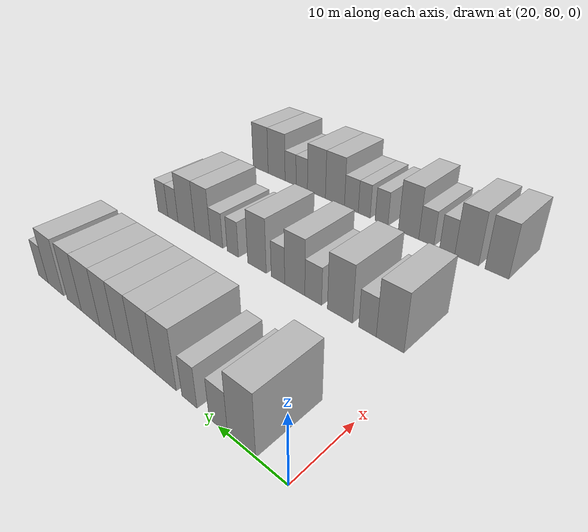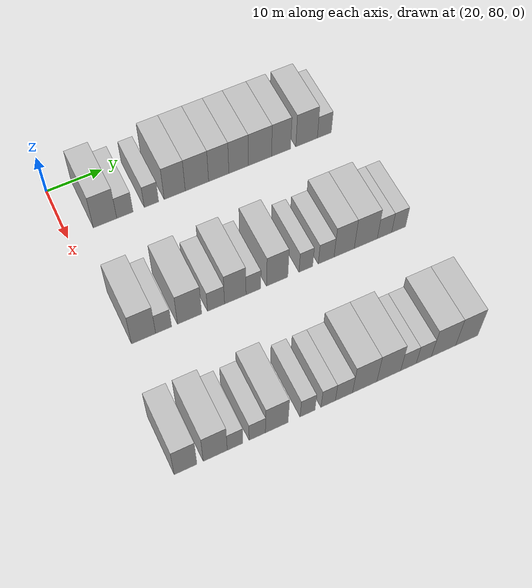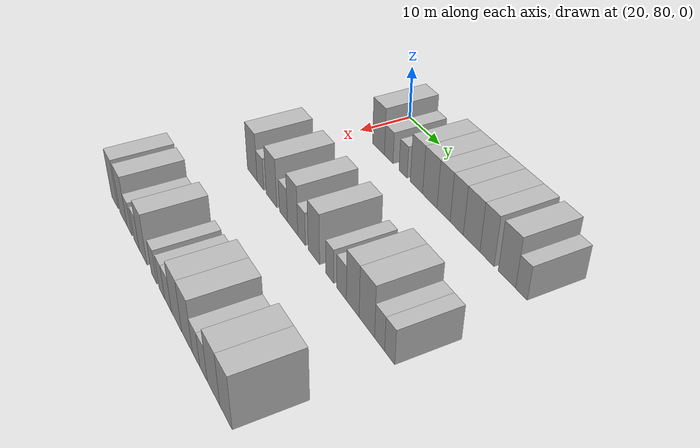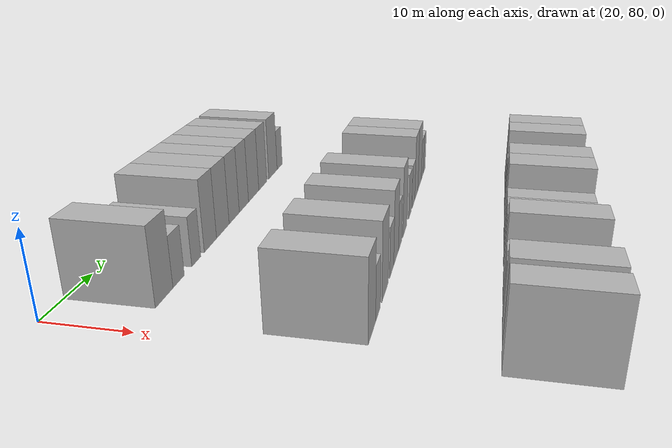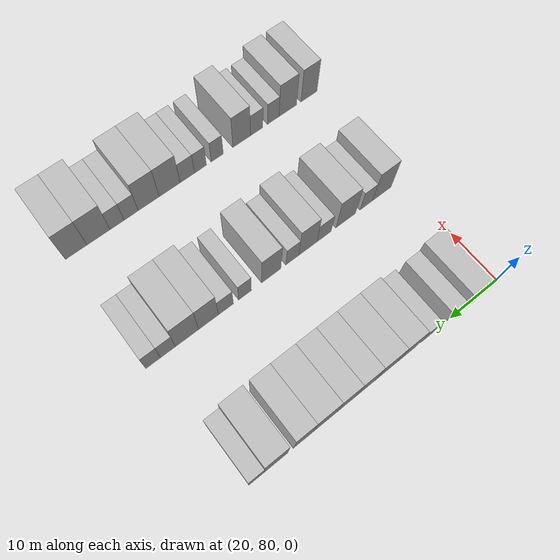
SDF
<sdf version="1.6">
 <world name="default">
  <model name="building_116">
   <static>1</static>
   <pose>25.0000 86.5409 0 0.000000 0.000000 0.000000</pose>
   <link name="link">
    <pose>0 0 4.50 0 0 0</pose>
    <collision name="collision"><geometry><box><size>10.0000 4.1463 9.0000</size></box></geometry></collision>
    <visual name="visual">
     <cast_shadows>0</cast_shadows>
     <geometry><box><size>10.0000 4.1463 9.0000</size></box></geometry>
     <material>
      <script>
       <uri>model://HANNAS_wall/materials/scripts</uri>
       <uri>model://HANNAS_wall/materials/textures</uri>
       <name>vrc/HANNAS_wall</name>
      </script>
     </material>
    </visual>
   </link>
  </model>
  <model name="building_117">
   <static>1</static>
   <pose>25.0000 90.0628 0 0.000000 0.000000 0.000000</pose>
   <link name="link">
    <pose>0 0 3.00 0 0 0</pose>
    <collision name="collision"><geometry><box><size>10.0000 2.8974 6.0000</size></box></geometry></collision>
    <visual name="visual">
     <cast_shadows>0</cast_shadows>
     <geometry><box><size>10.0000 2.8974 6.0000</size></box></geometry>
     <material>
      <script>
       <uri>model://HANNAS_wall/materials/scripts</uri>
       <uri>model://HANNAS_wall/materials/textures</uri>
       <name>vrc/HANNAS_wall</name>
      </script>
     </material>
    </visual>
   </link>
  </model>
  <model name="building_118">
   <static>1</static>
   <pose>25.0000 94.8070 0 0.000000 0.000000 0.000000</pose>
   <link name="link">
    <pose>0 0 3.00 0 0 0</pose>
    <collision name="collision"><geometry><box><size>10.0000 2.5909 6.0000</size></box></geometry></collision>
    <visual name="visual">
     <cast_shadows>0</cast_shadows>
     <geometry><box><size>10.0000 2.5909 6.0000</size></box></geometry>
     <material>
      <script>
       <uri>model://HANNAS_wall/materials/scripts</uri>
       <uri>model://HANNAS_wall/materials/textures</uri>
       <name>vrc/HANNAS_wall</name>
      </script>
     </material>
    </visual>
   </link>
  </model>
  <model name="building_119">
   <static>1</static>
   <pose>25.0000 99.0191 0 0.000000 0.000000 0.000000</pose>
   <link name="link">
    <pose>0 0 4.50 0 0 0</pose>
    <collision name="collision"><geometry><box><size>10.0000 3.8332 9.0000</size></box></geometry></collision>
    <visual name="visual">
     <cast_shadows>0</cast_shadows>
     <geometry><box><size>10.0000 3.8332 9.0000</size></box></geometry>
     <material>
      <script>
       <uri>model://HANNAS_wall/materials/scripts</uri>
       <uri>model://HANNAS_wall/materials/textures</uri>
       <name>vrc/HANNAS_wall</name>
      </script>
     </material>
    </visual>
   </link>
  </model>
  <model name="building_120">
   <static>1</static>
   <pose>25.0000 103.0786 0 0.000000 0.000000 0.000000</pose>
   <link name="link">
    <pose>0 0 4.50 0 0 0</pose>
    <collision name="collision"><geometry><box><size>10.0000 4.2858 9.0000</size></box></geometry></collision>
    <visual name="visual">
     <cast_shadows>0</cast_shadows>
     <geometry><box><size>10.0000 4.2858 9.0000</size></box></geometry>
     <material>
      <script>
       <uri>model://HANNAS_wall/materials/scripts</uri>
       <uri>model://HANNAS_wall/materials/textures</uri>
       <name>vrc/HANNAS_wall</name>
      </script>
     </material>
    </visual>
   </link>
  </model>
  <model name="building_121">
   <static>1</static>
   <pose>25.0000 107.0925 0 0.000000 0.000000 0.000000</pose>
   <link name="link">
    <pose>0 0 4.50 0 0 0</pose>
    <collision name="collision"><geometry><box><size>10.0000 3.7421 9.0000</size></box></geometry></collision>
    <visual name="visual">
     <cast_shadows>0</cast_shadows>
     <geometry><box><size>10.0000 3.7421 9.0000</size></box></geometry>
     <material>
      <script>
       <uri>model://HANNAS_wall/materials/scripts</uri>
       <uri>model://HANNAS_wall/materials/textures</uri>
       <name>vrc/HANNAS_wall</name>
      </script>
     </material>
    </visual>
   </link>
  </model>
  <model name="building_122">
   <static>1</static>
   <pose>25.0000 110.7872 0 0.000000 0.000000 0.000000</pose>
   <link name="link">
    <pose>0 0 4.50 0 0 0</pose>
    <collision name="collision"><geometry><box><size>10.0000 3.6472 9.0000</size></box></geometry></collision>
    <visual name="visual">
     <cast_shadows>0</cast_shadows>
     <geometry><box><size>10.0000 3.6472 9.0000</size></box></geometry>
     <material>
      <script>
       <uri>model://HANNAS_wall/materials/scripts</uri>
       <uri>model://HANNAS_wall/materials/textures</uri>
       <name>vrc/HANNAS_wall</name>
      </script>
     </material>
    </visual>
   </link>
  </model>
  <model name="building_123">
   <static>1</static>
   <pose>25.0000 114.7940 0 0.000000 0.000000 0.000000</pose>
   <link name="link">
    <pose>0 0 4.50 0 0 0</pose>
    <collision name="collision"><geometry><box><size>10.0000 4.3665 9.0000</size></box></geometry></collision>
    <visual name="visual">
     <cast_shadows>0</cast_shadows>
     <geometry><box><size>10.0000 4.3665 9.0000</size></box></geometry>
     <material>
      <script>
       <uri>model://HANNAS_wall/materials/scripts</uri>
       <uri>model://HANNAS_wall/materials/textures</uri>
       <name>vrc/HANNAS_wall</name>
      </script>
     </material>
    </visual>
   </link>
  </model>
  <model name="building_124">
   <static>1</static>
   <pose>25.0000 118.7830 0 0.000000 0.000000 0.000000</pose>
   <link name="link">
    <pose>0 0 4.50 0 0 0</pose>
    <collision name="collision"><geometry><box><size>10.0000 3.6114 9.0000</size></box></geometry></collision>
    <visual name="visual">
     <cast_shadows>0</cast_shadows>
     <geometry><box><size>10.0000 3.6114 9.0000</size></box></geometry>
     <material>
      <script>
       <uri>model://HANNAS_wall/materials/scripts</uri>
       <uri>model://HANNAS_wall/materials/textures</uri>
       <name>vrc/HANNAS_wall</name>
      </script>
     </material>
    </visual>
   </link>
  </model>
  <model name="building_125">
   <static>1</static>
   <pose>25.0000 123.6581 0 0.000000 0.000000 0.000000</pose>
   <link name="link">
    <pose>0 0 4.50 0 0 0</pose>
    <collision name="collision"><geometry><box><size>10.0000 4.1387 9.0000</size></box></geometry></collision>
    <visual name="visual">
     <cast_shadows>0</cast_shadows>
     <geometry><box><size>10.0000 4.1387 9.0000</size></box></geometry>
     <material>
      <script>
       <uri>model://HANNAS_wall/materials/scripts</uri>
       <uri>model://HANNAS_wall/materials/textures</uri>
       <name>vrc/HANNAS_wall</name>
      </script>
     </material>
    </visual>
   </link>
  </model>
  <model name="building_126">
   <static>1</static>
   <pose>25.0000 127.0789 0 0.000000 0.000000 0.000000</pose>
   <link name="link">
    <pose>0 0 3.00 0 0 0</pose>
    <collision name="collision"><geometry><box><size>10.0000 2.7028 6.0000</size></box></geometry></collision>
    <visual name="visual">
     <cast_shadows>0</cast_shadows>
     <geometry><box><size>10.0000 2.7028 6.0000</size></box></geometry>
     <material>
      <script>
       <uri>model://HANNAS_wall/materials/scripts</uri>
       <uri>model://HANNAS_wall/materials/textures</uri>
       <name>vrc/HANNAS_wall</name>
      </script>
     </material>
    </visual>
   </link>
  </model>
  <model name="building_309">
   <static>1</static>
   <pose>47.0000 84.0819 0 0.000000 0.000000 0.000000</pose>
   <link name="link">
    <pose>0 0 4.50 0 0 0</pose>
    <collision name="collision"><geometry><box><size>10.0000 4.0650 9.0000</size></box></geometry></collision>
    <visual name="visual">
     <cast_shadows>0</cast_shadows>
     <geometry><box><size>10.0000 4.0650 9.0000</size></box></geometry>
     <material>
      <script>
       <uri>model://HANNAS_wall/materials/scripts</uri>
       <uri>model://HANNAS_wall/materials/textures</uri>
       <name>vrc/HANNAS_wall</name>
      </script>
     </material>
    </visual>
   </link>
  </model>
  <model name="building_310">
   <static>1</static>
   <pose>47.0000 87.4662 0 0.000000 0.000000 0.000000</pose>
   <link name="link">
    <pose>0 0 3.00 0 0 0</pose>
    <collision name="collision"><geometry><box><size>10.0000 2.7037 6.0000</size></box></geometry></collision>
    <visual name="visual">
     <cast_shadows>0</cast_shadows>
     <geometry><box><size>10.0000 2.7037 6.0000</size></box></geometry>
     <material>
      <script>
       <uri>model://HANNAS_wall/materials/scripts</uri>
       <uri>model://HANNAS_wall/materials/textures</uri>
       <name>vrc/HANNAS_wall</name>
      </script>
     </material>
    </visual>
   </link>
  </model>
  <model name="building_311">
   <static>1</static>
   <pose>47.0000 91.8913 0 0.000000 0.000000 0.000000</pose>
   <link name="link">
    <pose>0 0 4.50 0 0 0</pose>
    <collision name="collision"><geometry><box><size>10.0000 4.1465 9.0000</size></box></geometry></collision>
    <visual name="visual">
     <cast_shadows>0</cast_shadows>
     <geometry><box><size>10.0000 4.1465 9.0000</size></box></geometry>
     <material>
      <script>
       <uri>model://HANNAS_wall/materials/scripts</uri>
       <uri>model://HANNAS_wall/materials/textures</uri>
       <name>vrc/HANNAS_wall</name>
      </script>
     </material>
    </visual>
   </link>
  </model>
  <model name="building_312">
   <static>1</static>
   <pose>47.0000 96.4433 0 0.000000 0.000000 0.000000</pose>
   <link name="link">
    <pose>0 0 3.00 0 0 0</pose>
    <collision name="collision"><geometry><box><size>10.0000 2.9574 6.0000</size></box></geometry></collision>
    <visual name="visual">
     <cast_shadows>0</cast_shadows>
     <geometry><box><size>10.0000 2.9574 6.0000</size></box></geometry>
     <material>
      <script>
       <uri>model://HANNAS_wall/materials/scripts</uri>
       <uri>model://HANNAS_wall/materials/textures</uri>
       <name>vrc/HANNAS_wall</name>
      </script>
     </material>
    </visual>
   </link>
  </model>
  <model name="building_313">
   <static>1</static>
   <pose>47.0000 99.7922 0 0.000000 0.000000 0.000000</pose>
   <link name="link">
    <pose>0 0 4.50 0 0 0</pose>
    <collision name="collision"><geometry><box><size>10.0000 3.7405 9.0000</size></box></geometry></collision>
    <visual name="visual">
     <cast_shadows>0</cast_shadows>
     <geometry><box><size>10.0000 3.7405 9.0000</size></box></geometry>
     <material>
      <script>
       <uri>model://HANNAS_wall/materials/scripts</uri>
       <uri>model://HANNAS_wall/materials/textures</uri>
       <name>vrc/HANNAS_wall</name>
      </script>
     </material>
    </visual>
   </link>
  </model>
  <model name="building_314">
   <static>1</static>
   <pose>47.0000 102.9654 0 0.000000 0.000000 0.000000</pose>
   <link name="link">
    <pose>0 0 3.00 0 0 0</pose>
    <collision name="collision"><geometry><box><size>10.0000 2.6058 6.0000</size></box></geometry></collision>
    <visual name="visual">
     <cast_shadows>0</cast_shadows>
     <geometry><box><size>10.0000 2.6058 6.0000</size></box></geometry>
     <material>
      <script>
       <uri>model://HANNAS_wall/materials/scripts</uri>
       <uri>model://HANNAS_wall/materials/textures</uri>
       <name>vrc/HANNAS_wall</name>
      </script>
     </material>
    </visual>
   </link>
  </model>
  <model name="building_315">
   <static>1</static>
   <pose>47.0000 107.1641 0 0.000000 0.000000 0.000000</pose>
   <link name="link">
    <pose>0 0 4.50 0 0 0</pose>
    <collision name="collision"><geometry><box><size>10.0000 3.7917 9.0000</size></box></geometry></collision>
    <visual name="visual">
     <cast_shadows>0</cast_shadows>
     <geometry><box><size>10.0000 3.7917 9.0000</size></box></geometry>
     <material>
      <script>
       <uri>model://HANNAS_wall/materials/scripts</uri>
       <uri>model://HANNAS_wall/materials/textures</uri>
       <name>vrc/HANNAS_wall</name>
      </script>
     </material>
    </visual>
   </link>
  </model>
  <model name="building_316">
   <static>1</static>
   <pose>47.0000 112.2945 0 0.000000 0.000000 0.000000</pose>
   <link name="link">
    <pose>0 0 3.00 0 0 0</pose>
    <collision name="collision"><geometry><box><size>10.0000 2.4691 6.0000</size></box></geometry></collision>
    <visual name="visual">
     <cast_shadows>0</cast_shadows>
     <geometry><box><size>10.0000 2.4691 6.0000</size></box></geometry>
     <material>
      <script>
       <uri>model://HANNAS_wall/materials/scripts</uri>
       <uri>model://HANNAS_wall/materials/textures</uri>
       <name>vrc/HANNAS_wall</name>
      </script>
     </material>
    </visual>
   </link>
  </model>
  <model name="building_317">
   <static>1</static>
   <pose>47.0000 115.9572 0 0.000000 0.000000 0.000000</pose>
   <link name="link">
    <pose>0 0 3.00 0 0 0</pose>
    <collision name="collision"><geometry><box><size>10.0000 2.8562 6.0000</size></box></geometry></collision>
    <visual name="visual">
     <cast_shadows>0</cast_shadows>
     <geometry><box><size>10.0000 2.8562 6.0000</size></box></geometry>
     <material>
      <script>
       <uri>model://HANNAS_wall/materials/scripts</uri>
       <uri>model://HANNAS_wall/materials/textures</uri>
       <name>vrc/HANNAS_wall</name>
      </script>
     </material>
    </visual>
   </link>
  </model>
  <model name="building_318">
   <static>1</static>
   <pose>47.0000 119.2346 0 0.000000 0.000000 0.000000</pose>
   <link name="link">
    <pose>0 0 4.50 0 0 0</pose>
    <collision name="collision"><geometry><box><size>10.0000 3.6986 9.0000</size></box></geometry></collision>
    <visual name="visual">
     <cast_shadows>0</cast_shadows>
     <geometry><box><size>10.0000 3.6986 9.0000</size></box></geometry>
     <material>
      <script>
       <uri>model://HANNAS_wall/materials/scripts</uri>
       <uri>model://HANNAS_wall/materials/textures</uri>
       <name>vrc/HANNAS_wall</name>
      </script>
     </material>
    </visual>
   </link>
  </model>
  <model name="building_319">
   <static>1</static>
   <pose>47.0000 123.2150 0 0.000000 0.000000 0.000000</pose>
   <link name="link">
    <pose>0 0 4.50 0 0 0</pose>
    <collision name="collision"><geometry><box><size>10.0000 4.2623 9.0000</size></box></geometry></collision>
    <visual name="visual">
     <cast_shadows>0</cast_shadows>
     <geometry><box><size>10.0000 4.2623 9.0000</size></box></geometry>
     <material>
      <script>
       <uri>model://HANNAS_wall/materials/scripts</uri>
       <uri>model://HANNAS_wall/materials/textures</uri>
       <name>vrc/HANNAS_wall</name>
      </script>
     </material>
    </visual>
   </link>
  </model>
  <model name="building_320">
   <static>1</static>
   <pose>47.0000 126.6829 0 0.000000 0.000000 0.000000</pose>
   <link name="link">
    <pose>0 0 3.00 0 0 0</pose>
    <collision name="collision"><geometry><box><size>10.0000 2.6734 6.0000</size></box></geometry></collision>
    <visual name="visual">
     <cast_shadows>0</cast_shadows>
     <geometry><box><size>10.0000 2.6734 6.0000</size></box></geometry>
     <material>
      <script>
       <uri>model://HANNAS_wall/materials/scripts</uri>
       <uri>model://HANNAS_wall/materials/textures</uri>
       <name>vrc/HANNAS_wall</name>
      </script>
     </material>
    </visual>
   </link>
  </model>
  <model name="building_321">
   <static>1</static>
   <pose>47.0000 129.3252 0 0.000000 0.000000 0.000000</pose>
   <link name="link">
    <pose>0 0 3.00 0 0 0</pose>
    <collision name="collision"><geometry><box><size>10.0000 2.6112 6.0000</size></box></geometry></collision>
    <visual name="visual">
     <cast_shadows>0</cast_shadows>
     <geometry><box><size>10.0000 2.6112 6.0000</size></box></geometry>
     <material>
      <script>
       <uri>model://HANNAS_wall/materials/scripts</uri>
       <uri>model://HANNAS_wall/materials/textures</uri>
       <name>vrc/HANNAS_wall</name>
      </script>
     </material>
    </visual>
   </link>
  </model>
  <model name="building_492">
   <static>1</static>
   <pose>69.0000 81.4013 0 0.000000 0.000000 0.000000</pose>
   <link name="link">
    <pose>0 0 4.50 0 0 0</pose>
    <collision name="collision"><geometry><box><size>10.0000 3.6328 9.0000</size></box></geometry></collision>
    <visual name="visual">
     <cast_shadows>0</cast_shadows>
     <geometry><box><size>10.0000 3.6328 9.0000</size></box></geometry>
     <material>
      <script>
       <uri>model://HANNAS_wall/materials/scripts</uri>
       <uri>model://HANNAS_wall/materials/textures</uri>
       <name>vrc/HANNAS_wall</name>
      </script>
     </material>
    </visual>
   </link>
  </model>
  <model name="building_493">
   <static>1</static>
   <pose>69.0000 86.1572 0 0.000000 0.000000 0.000000</pose>
   <link name="link">
    <pose>0 0 4.50 0 0 0</pose>
    <collision name="collision"><geometry><box><size>10.0000 3.8791 9.0000</size></box></geometry></collision>
    <visual name="visual">
     <cast_shadows>0</cast_shadows>
     <geometry><box><size>10.0000 3.8791 9.0000</size></box></geometry>
     <material>
      <script>
       <uri>model://HANNAS_wall/materials/scripts</uri>
       <uri>model://HANNAS_wall/materials/textures</uri>
       <name>vrc/HANNAS_wall</name>
      </script>
     </material>
    </visual>
   </link>
  </model>
  <model name="building_494">
   <static>1</static>
   <pose>69.0000 89.3719 0 0.000000 0.000000 0.000000</pose>
   <link name="link">
    <pose>0 0 3.00 0 0 0</pose>
    <collision name="collision"><geometry><box><size>10.0000 2.5503 6.0000</size></box></geometry></collision>
    <visual name="visual">
     <cast_shadows>0</cast_shadows>
     <geometry><box><size>10.0000 2.5503 6.0000</size></box></geometry>
     <material>
      <script>
       <uri>model://HANNAS_wall/materials/scripts</uri>
       <uri>model://HANNAS_wall/materials/textures</uri>
       <name>vrc/HANNAS_wall</name>
      </script>
     </material>
    </visual>
   </link>
  </model>
  <model name="building_495">
   <static>1</static>
   <pose>69.0000 92.9912 0 0.000000 0.000000 0.000000</pose>
   <link name="link">
    <pose>0 0 3.00 0 0 0</pose>
    <collision name="collision"><geometry><box><size>10.0000 2.6883 6.0000</size></box></geometry></collision>
    <visual name="visual">
     <cast_shadows>0</cast_shadows>
     <geometry><box><size>10.0000 2.6883 6.0000</size></box></geometry>
     <material>
      <script>
       <uri>model://HANNAS_wall/materials/scripts</uri>
       <uri>model://HANNAS_wall/materials/textures</uri>
       <name>vrc/HANNAS_wall</name>
      </script>
     </material>
    </visual>
   </link>
  </model>
  <model name="building_496">
   <static>1</static>
   <pose>69.0000 96.2151 0 0.000000 0.000000 0.000000</pose>
   <link name="link">
    <pose>0 0 4.50 0 0 0</pose>
    <collision name="collision"><geometry><box><size>10.0000 3.7594 9.0000</size></box></geometry></collision>
    <visual name="visual">
     <cast_shadows>0</cast_shadows>
     <geometry><box><size>10.0000 3.7594 9.0000</size></box></geometry>
     <material>
      <script>
       <uri>model://HANNAS_wall/materials/scripts</uri>
       <uri>model://HANNAS_wall/materials/textures</uri>
       <name>vrc/HANNAS_wall</name>
      </script>
     </material>
    </visual>
   </link>
  </model>
  <model name="building_497">
   <static>1</static>
   <pose>69.0000 101.3490 0 0.000000 0.000000 0.000000</pose>
   <link name="link">
    <pose>0 0 3.00 0 0 0</pose>
    <collision name="collision"><geometry><box><size>10.0000 2.5084 6.0000</size></box></geometry></collision>
    <visual name="visual">
     <cast_shadows>0</cast_shadows>
     <geometry><box><size>10.0000 2.5084 6.0000</size></box></geometry>
     <material>
      <script>
       <uri>model://HANNAS_wall/materials/scripts</uri>
       <uri>model://HANNAS_wall/materials/textures</uri>
       <name>vrc/HANNAS_wall</name>
      </script>
     </material>
    </visual>
   </link>
  </model>
  <model name="building_498">
   <static>1</static>
   <pose>69.0000 104.8216 0 0.000000 0.000000 0.000000</pose>
   <link name="link">
    <pose>0 0 3.00 0 0 0</pose>
    <collision name="collision"><geometry><box><size>10.0000 2.4367 6.0000</size></box></geometry></collision>
    <visual name="visual">
     <cast_shadows>0</cast_shadows>
     <geometry><box><size>10.0000 2.4367 6.0000</size></box></geometry>
     <material>
      <script>
       <uri>model://HANNAS_wall/materials/scripts</uri>
       <uri>model://HANNAS_wall/materials/textures</uri>
       <name>vrc/HANNAS_wall</name>
      </script>
     </material>
    </visual>
   </link>
  </model>
  <model name="building_499">
   <static>1</static>
   <pose>69.0000 107.4997 0 0.000000 0.000000 0.000000</pose>
   <link name="link">
    <pose>0 0 3.00 0 0 0</pose>
    <collision name="collision"><geometry><box><size>10.0000 2.9196 6.0000</size></box></geometry></collision>
    <visual name="visual">
     <cast_shadows>0</cast_shadows>
     <geometry><box><size>10.0000 2.9196 6.0000</size></box></geometry>
     <material>
      <script>
       <uri>model://HANNAS_wall/materials/scripts</uri>
       <uri>model://HANNAS_wall/materials/textures</uri>
       <name>vrc/HANNAS_wall</name>
      </script>
     </material>
    </visual>
   </link>
  </model>
  <model name="building_500">
   <static>1</static>
   <pose>69.0000 111.0514 0 0.000000 0.000000 0.000000</pose>
   <link name="link">
    <pose>0 0 4.50 0 0 0</pose>
    <collision name="collision"><geometry><box><size>10.0000 4.1837 9.0000</size></box></geometry></collision>
    <visual name="visual">
     <cast_shadows>0</cast_shadows>
     <geometry><box><size>10.0000 4.1837 9.0000</size></box></geometry>
     <material>
      <script>
       <uri>model://HANNAS_wall/materials/scripts</uri>
       <uri>model://HANNAS_wall/materials/textures</uri>
       <name>vrc/HANNAS_wall</name>
      </script>
     </material>
    </visual>
   </link>
  </model>
  <model name="building_501">
   <static>1</static>
   <pose>69.0000 115.2149 0 0.000000 0.000000 0.000000</pose>
   <link name="link">
    <pose>0 0 4.50 0 0 0</pose>
    <collision name="collision"><geometry><box><size>10.0000 4.1434 9.0000</size></box></geometry></collision>
    <visual name="visual">
     <cast_shadows>0</cast_shadows>
     <geometry><box><size>10.0000 4.1434 9.0000</size></box></geometry>
     <material>
      <script>
       <uri>model://HANNAS_wall/materials/scripts</uri>
       <uri>model://HANNAS_wall/materials/textures</uri>
       <name>vrc/HANNAS_wall</name>
      </script>
     </material>
    </visual>
   </link>
  </model>
  <model name="building_502">
   <static>1</static>
   <pose>69.0000 118.6529 0 0.000000 0.000000 0.000000</pose>
   <link name="link">
    <pose>0 0 3.00 0 0 0</pose>
    <collision name="collision"><geometry><box><size>10.0000 2.7328 6.0000</size></box></geometry></collision>
    <visual name="visual">
     <cast_shadows>0</cast_shadows>
     <geometry><box><size>10.0000 2.7328 6.0000</size></box></geometry>
     <material>
      <script>
       <uri>model://HANNAS_wall/materials/scripts</uri>
       <uri>model://HANNAS_wall/materials/textures</uri>
       <name>vrc/HANNAS_wall</name>
      </script>
     </material>
    </visual>
   </link>
  </model>
  <model name="building_503">
   <static>1</static>
   <pose>69.0000 121.3659 0 0.000000 0.000000 0.000000</pose>
   <link name="link">
    <pose>0 0 3.00 0 0 0</pose>
    <collision name="collision"><geometry><box><size>10.0000 2.6931 6.0000</size></box></geometry></collision>
    <visual name="visual">
     <cast_shadows>0</cast_shadows>
     <geometry><box><size>10.0000 2.6931 6.0000</size></box></geometry>
     <material>
      <script>
       <uri>model://HANNAS_wall/materials/scripts</uri>
       <uri>model://HANNAS_wall/materials/textures</uri>
       <name>vrc/HANNAS_wall</name>
      </script>
     </material>
    </visual>
   </link>
  </model>
  <model name="building_504">
   <static>1</static>
   <pose>69.0000 124.8737 0 0.000000 0.000000 0.000000</pose>
   <link name="link">
    <pose>0 0 4.50 0 0 0</pose>
    <collision name="collision"><geometry><box><size>10.0000 4.3226 9.0000</size></box></geometry></collision>
    <visual name="visual">
     <cast_shadows>0</cast_shadows>
     <geometry><box><size>10.0000 4.3226 9.0000</size></box></geometry>
     <material>
      <script>
       <uri>model://HANNAS_wall/materials/scripts</uri>
       <uri>model://HANNAS_wall/materials/textures</uri>
       <name>vrc/HANNAS_wall</name>
      </script>
     </material>
    </visual>
   </link>
  </model>
  <model name="building_505">
   <static>1</static>
   <pose>69.0000 129.0281 0 0.000000 0.000000 0.000000</pose>
   <link name="link">
    <pose>0 0 4.50 0 0 0</pose>
    <collision name="collision"><geometry><box><size>10.0000 3.9862 9.0000</size></box></geometry></collision>
    <visual name="visual">
     <cast_shadows>0</cast_shadows>
     <geometry><box><size>10.0000 3.9862 9.0000</size></box></geometry>
     <material>
      <script>
       <uri>model://HANNAS_wall/materials/scripts</uri>
       <uri>model://HANNAS_wall/materials/textures</uri>
       <name>vrc/HANNAS_wall</name>
      </script>
     </material>
    </visual>
   </link>
  </model>
 </world>
</sdf>
